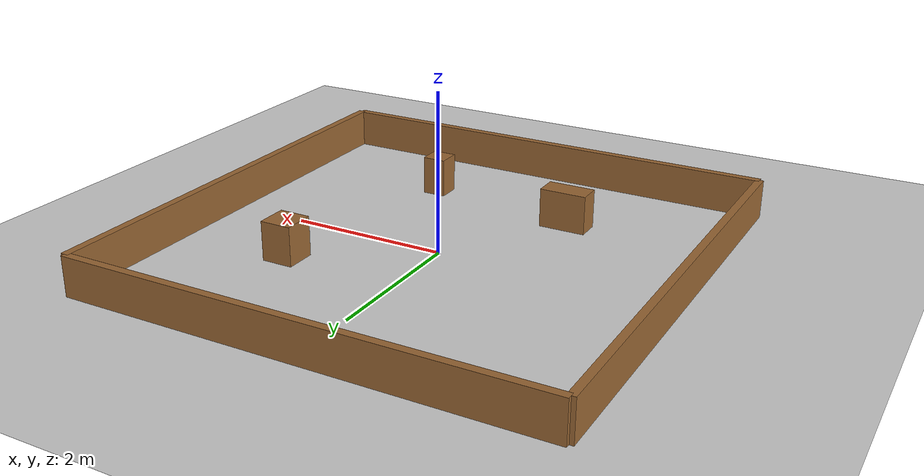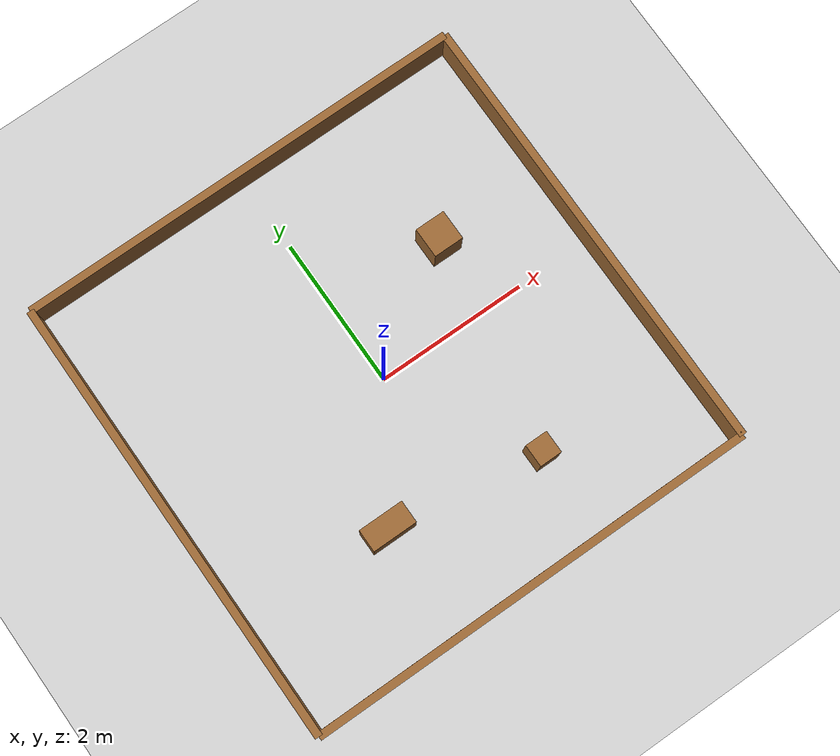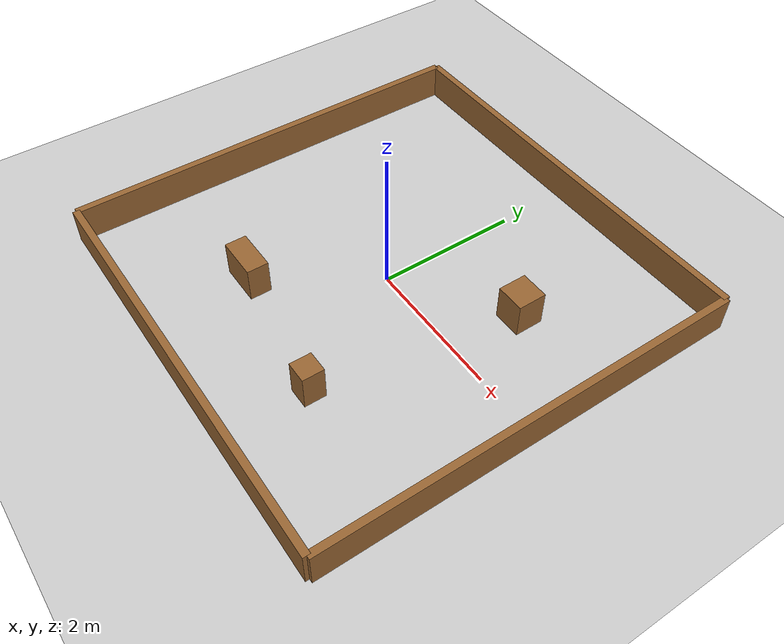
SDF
<?xml version="1.0" ?>
<sdf version="1.8">
  <world name="default">
    <physics name="1ms" type="ignored">
      <max_step_size>0.001</max_step_size>
      <real_time_factor>1.0</real_time_factor>
    </physics>
    <plugin filename="gz-sim-physics-system" name="gz::sim::systems::Physics"/>
    <plugin filename="gz-sim-user-commands-system" name="gz::sim::systems::UserCommands"/>
    <plugin filename="gz-sim-scene-broadcaster-system" name="gz::sim::systems::SceneBroadcaster"/>
    <plugin filename="gz-sim-imu-system" name="gz::sim::systems::Imu"/>
    <plugin filename="gz-sim-sensors-system" name="gz::sim::systems::Sensors">
      <render_engine>ogre2</render_engine>
    </plugin>

    <light type="directional" name="sun">
      <cast_shadows>false</cast_shadows>
      <pose>0 0 10 0 0 0</pose>
      <diffuse>0.8 0.8 0.8 1</diffuse>
      <specular>0.2 0.2 0.2 1</specular>
      <direction>-0.5 0.1 -0.9</direction>
    </light>

    <model name="ground_plane">
      <static>true</static>
      <link name="link">
        <collision name="collision">
          <geometry>
            <plane>
              <normal>0 0 1</normal>
              <size>100 100</size>
            </plane>
          </geometry>
        </collision>
        <visual name="visual">
          <geometry>
            <plane>
              <normal>0 0 1</normal>
              <size>100 100</size>
            </plane>
          </geometry>
          <material>
            <ambient>0.8 0.8 0.8 1</ambient>
            <diffuse>0.8 0.8 0.8 1</diffuse>
          </material>
        </visual>
      </link>
    </model>

    <model name="wall_n">
      <static>true</static>
      <pose>0 3 0.25 0 0 0</pose>
      <link name="link">
        <collision name="collision"><geometry><box><size>6 0.1 0.5</size></box></geometry></collision>
        <visual name="visual">
          <geometry><box><size>6 0.1 0.5</size></box></geometry>
          <material><ambient>0.6 0.4 0.2 1</ambient><diffuse>0.6 0.4 0.2 1</diffuse></material>
        </visual>
      </link>
    </model>
    <model name="wall_s">
      <static>true</static>
      <pose>0 -3 0.25 0 0 0</pose>
      <link name="link">
        <collision name="collision"><geometry><box><size>6 0.1 0.5</size></box></geometry></collision>
        <visual name="visual">
          <geometry><box><size>6 0.1 0.5</size></box></geometry>
          <material><ambient>0.6 0.4 0.2 1</ambient><diffuse>0.6 0.4 0.2 1</diffuse></material>
        </visual>
      </link>
    </model>
    <model name="wall_e">
      <static>true</static>
      <pose>3 0 0.25 0 0 0</pose>
      <link name="link">
        <collision name="collision"><geometry><box><size>0.1 6 0.5</size></box></geometry></collision>
        <visual name="visual">
          <geometry><box><size>0.1 6 0.5</size></box></geometry>
          <material><ambient>0.6 0.4 0.2 1</ambient><diffuse>0.6 0.4 0.2 1</diffuse></material>
        </visual>
      </link>
    </model>
    <model name="wall_w">
      <static>true</static>
      <pose>-3 0 0.25 0 0 0</pose>
      <link name="link">
        <collision name="collision"><geometry><box><size>0.1 6 0.5</size></box></geometry></collision>
        <visual name="visual">
          <geometry><box><size>0.1 6 0.5</size></box></geometry>
          <material><ambient>0.6 0.4 0.2 1</ambient><diffuse>0.6 0.4 0.2 1</diffuse></material>
        </visual>
      </link>
    </model>
    <model name="box_1">
      <static>true</static>
      <pose>1.5 1 0.25 0 0 0</pose>
      <link name="link">
        <collision name="collision"><geometry><box><size>0.4 0.4 0.5</size></box></geometry></collision>
        <visual name="visual">
          <geometry><box><size>0.4 0.4 0.5</size></box></geometry>
          <material><ambient>0.6 0.4 0.2 1</ambient><diffuse>0.6 0.4 0.2 1</diffuse></material>
        </visual>
      </link>
    </model>
    <model name="box_2">
      <static>true</static>
      <pose>-1 -1.5 0.25 0 0 0</pose>
      <link name="link">
        <collision name="collision"><geometry><box><size>0.6 0.3 0.5</size></box></geometry></collision>
        <visual name="visual">
          <geometry><box><size>0.6 0.3 0.5</size></box></geometry>
          <material><ambient>0.6 0.4 0.2 1</ambient><diffuse>0.6 0.4 0.2 1</diffuse></material>
        </visual>
      </link>
    </model>
    <model name="box_3">
      <static>true</static>
      <pose>1 -1.8 0.25 0 0 0</pose>
      <link name="link">
        <collision name="collision"><geometry><box><size>0.3 0.3 0.5</size></box></geometry></collision>
        <visual name="visual">
          <geometry><box><size>0.3 0.3 0.5</size></box></geometry>
          <material><ambient>0.6 0.4 0.2 1</ambient><diffuse>0.6 0.4 0.2 1</diffuse></material>
        </visual>
      </link>
    </model>

    <scene>
      <shadows>false</shadows>
    </scene>
  </world>
</sdf>
